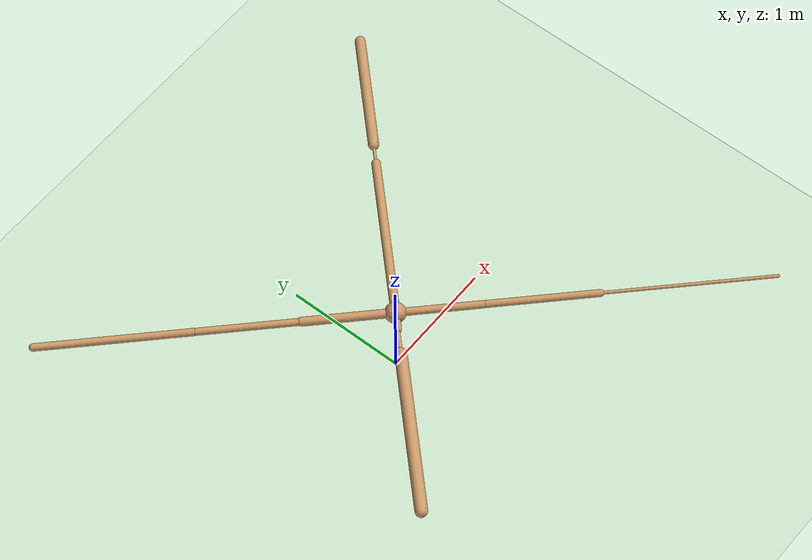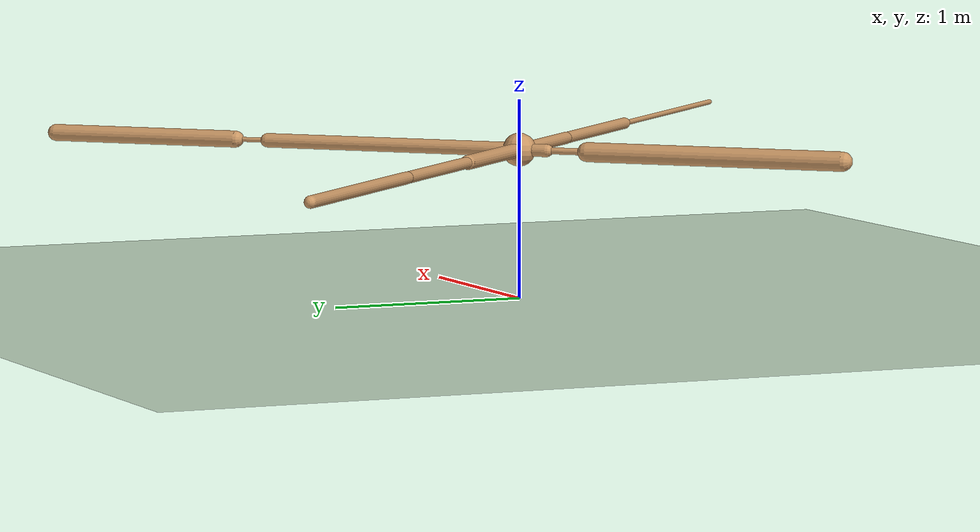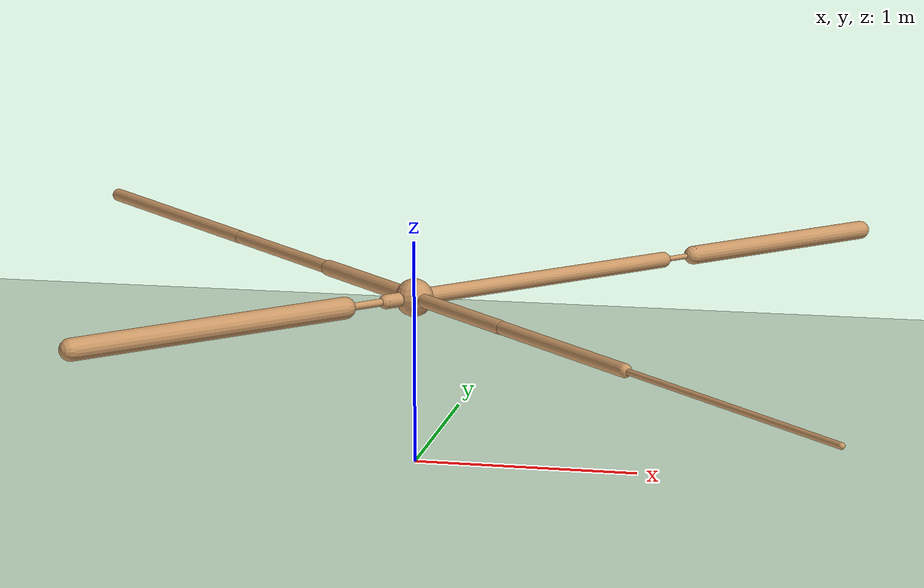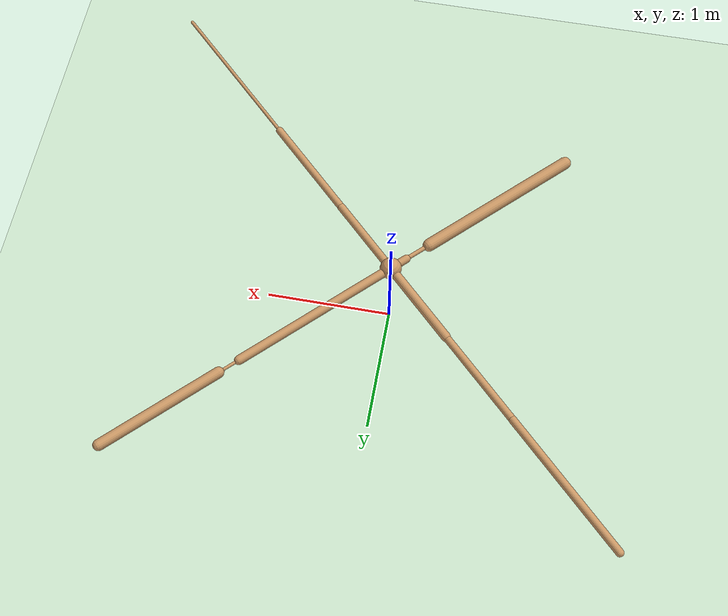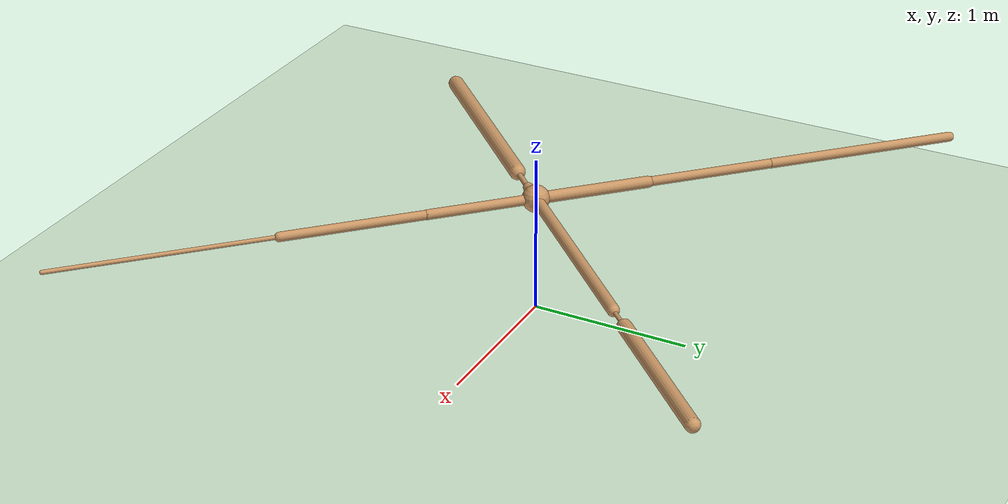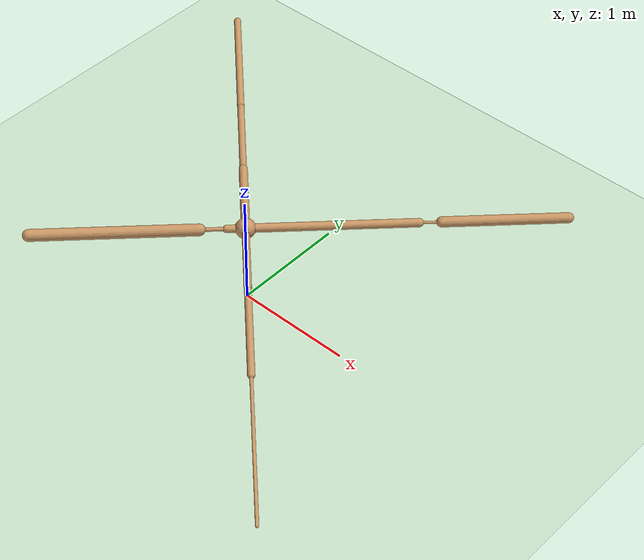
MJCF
<mujoco model="ant">
  <compiler angle="degree" coordinate="local" inertiafromgeom="true" />
  <option integrator="RK4" timestep="0.01" />
  <custom>
    <numeric data="0.0 0.0 0.55 1.0 0.0 0.0 0.0 0.0 1.0 0.0 -1.0 0.0 -1.0 0.0 1.0" name="init_qpos" />
  </custom>
  <default>
    <joint armature="1" damping="1" limited="true" />
    <geom conaffinity="0" condim="3" density="5.0" friction="1 0.5 0.5" margin="0.01" rgba="0.8 0.6 0.4 1" />
  </default>
  <asset>
    <texture builtin="gradient" height="100" rgb1="1 1 1" rgb2="0 0 0" type="skybox" width="100" />
    <texture builtin="flat" height="1278" mark="cross" markrgb="1 1 1" name="texgeom" random="0.01" rgb1="0.8 0.6 0.4" rgb2="0.8 0.6 0.4" type="cube" width="127" />
    <texture builtin="checker" height="100" name="texplane" rgb1="0 0 0" rgb2="0.8 0.8 0.8" type="2d" width="100" />
    <material name="MatPlane" reflectance="0.5" shininess="1" specular="1" texrepeat="60 60" texture="texplane" />
    <material name="geom" texture="texgeom" texuniform="true" />
  </asset>
  <worldbody>
    <light cutoff="100" diffuse="1 1 1" dir="-0 0 -1.3" directional="true" exponent="1" pos="0 0 1.3" specular=".1 .1 .1" />
    <geom conaffinity="1" condim="3" material="MatPlane" name="floor" pos="0 0 0" rgba="0.8 0.9 0.8 1" size="40 40 40" type="plane" />
    <body name="torso" pos="0 0 0.75">
      <camera name="track" mode="trackcom" pos="0 -11 5" xyaxes="1 0 0 0 0.5 1" />
      <geom name="torso_geom" pos="0 0 0" size="0.08439946919679642" type="sphere" />
      <joint armature="0" damping="0" limited="false" margin="0.01" name="root" pos="0 0 0" type="free" />
      <body name="front_left_leg" pos="0 0 0">
        <geom fromto="0 0 0 0.9686086177825928 0.9686086177825928 0" name="aux_1_geom" size="0.03624017536640167" type="capsule" />
        <body name="aux_1" pos="0.9686086177825928 0.9686086177825928 0">
          <joint axis="0 0 1" name="hip_1" pos="0.0 0.0 0.0" range="-30 30" type="hinge" />
          <geom fromto="0 0 0 0.12513072788715363 0.12513072788715363 0" name="left_leg_geom" size="0.012257316149771214" type="capsule" />
          <body name="left_leg_geom_aux" pos="0.12513072788715363 0.12513072788715363 0">
            <joint axis="-1 1 0" name="ankle_1" pos="0.0 0.0 0.0" range="30 70" type="hinge" />
            <geom fromto="0 0 0 0.7119696140289307 0.7119696140289307 0" name="left_ankle_geom" size="0.04300247132778168" type="capsule" />
          </body>
        </body>
      </body>
      <body name="front_right_leg" pos="0 0 0">
        <geom fromto="0 0 0 -0.5041630268096924 0.5041630268096924 0" name="aux_2_geom" size="0.03645717352628708" type="capsule" />
        <body name="aux_2" pos="-0.5041630268096924 0.5041630268096924 0">
          <joint axis="0 0 1" name="hip_2" pos="0.0 0.0 0.0" range="-30 30" type="hinge" />
          <geom fromto="0 0 0 -0.5701992511749268 0.5701992511749268 0" name="right_leg_geom" size="0.029435571283102036" type="capsule" />
          <body name="right_leg_geom_aux" pos="-0.5701992511749268 0.5701992511749268 0">
            <joint axis="1 1 0" name="ankle_2" pos="0.0 0.0 0.0" range="-70 -30" type="hinge" />
            <geom fromto="0 0 0 -0.8554003238677979 0.8554003238677979 0" name="right_ankle_geom" size="0.030603719875216484" type="capsule" />
          </body>
        </body>
      </body>
      <body name="back_leg" pos="0 0 0">
        <geom fromto="0 0 0 -0.10421456396579742 -0.10421456396579742 0" name="aux_3_geom" size="0.03242509067058563" type="capsule" />
        <body name="aux_3" pos="-0.10421456396579742 -0.10421456396579742 0">
          <joint axis="0 0 1" name="hip_3" pos="0.0 0.0 0.0" range="-30 30" type="hinge" />
          <geom fromto="0 0 0 -0.15201714634895325 -0.15201714634895325 0" name="back_leg_geom" size="0.016990259289741516" type="capsule" />
          <body name="back_leg_geom_aux" pos="-0.15201714634895325 -0.15201714634895325 0">
            <joint axis="-1 1 0" name="ankle_3" pos="0.0 0.0 0.0" range="-70 -30" type="hinge" />
            <geom fromto="0 0 0 -0.945600152015686 -0.945600152015686 0" name="third_ankle_geom" size="0.049592867493629456" type="capsule" />
          </body>
        </body>
      </body>
      <body name="right_back_leg" pos="0 0 0">
        <geom fromto="0 0 0 0.4767668545246124 -0.4767668545246124 0" name="aux_4_geom" size="0.03117424063384533" type="capsule" />
        <body name="aux_4" pos="0.4767668545246124 -0.4767668545246124 0">
          <joint axis="0 0 1" name="hip_4" pos="0.0 0.0 0.0" range="-30 30" type="hinge" />
          <geom fromto="0 0 0 0.6269267201423645 -0.6269267201423645 0" name="rightback_leg_geom" size="0.029518773779273033" type="capsule" />
          <body name="rightback_leg_geom_aux" pos="0.6269267201423645 -0.6269267201423645 0">
            <joint axis="1 1 0" name="ankle_4" pos="0.0 0.0 0.0" range="30 70" type="hinge" />
            <geom fromto="0 0 0 0.9627431035041809 -0.9627431035041809 0" name="fourth_ankle_geom" size="0.013823139481246471" type="capsule" />
          </body>
        </body>
      </body>
    </body>
  </worldbody>
  <actuator>
    <motor ctrllimited="true" ctrlrange="-1.0 1.0" joint="hip_4" gear="150" />
    <motor ctrllimited="true" ctrlrange="-1.0 1.0" joint="ankle_4" gear="150" />
    <motor ctrllimited="true" ctrlrange="-1.0 1.0" joint="hip_1" gear="150" />
    <motor ctrllimited="true" ctrlrange="-1.0 1.0" joint="ankle_1" gear="150" />
    <motor ctrllimited="true" ctrlrange="-1.0 1.0" joint="hip_2" gear="150" />
    <motor ctrllimited="true" ctrlrange="-1.0 1.0" joint="ankle_2" gear="150" />
    <motor ctrllimited="true" ctrlrange="-1.0 1.0" joint="hip_3" gear="150" />
    <motor ctrllimited="true" ctrlrange="-1.0 1.0" joint="ankle_3" gear="150" />
  </actuator>
</mujoco>
